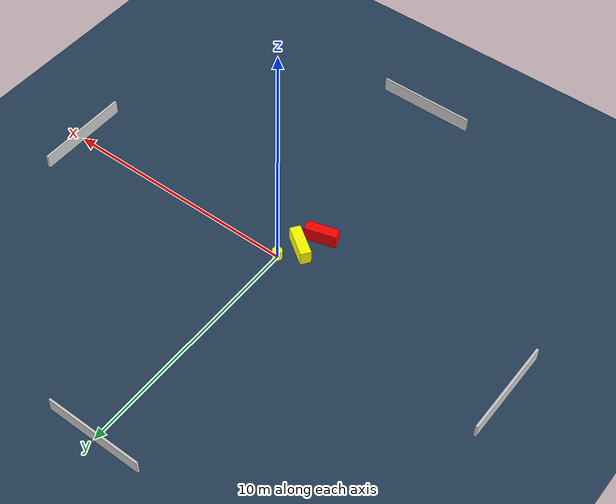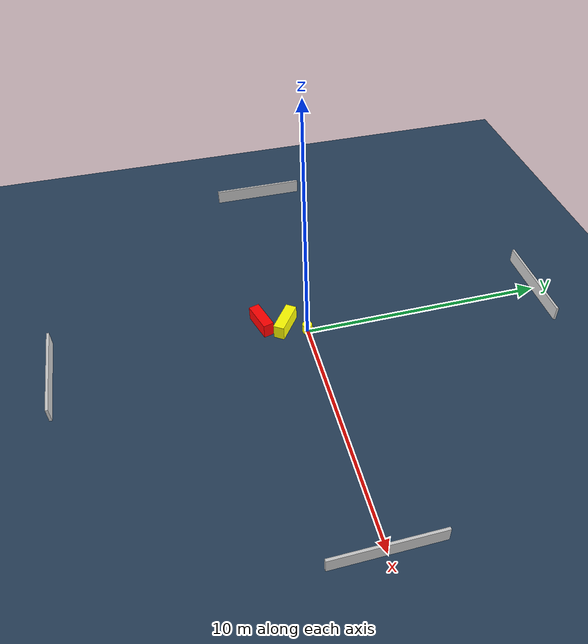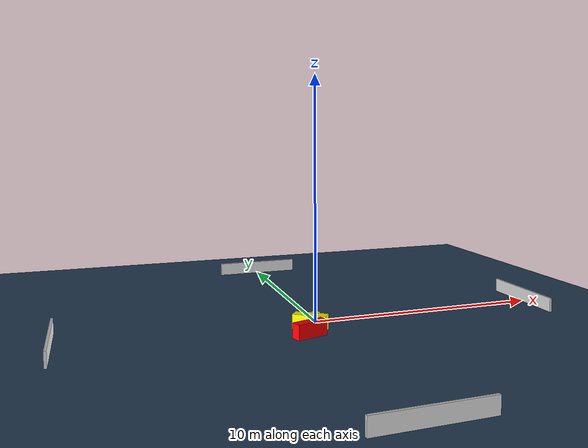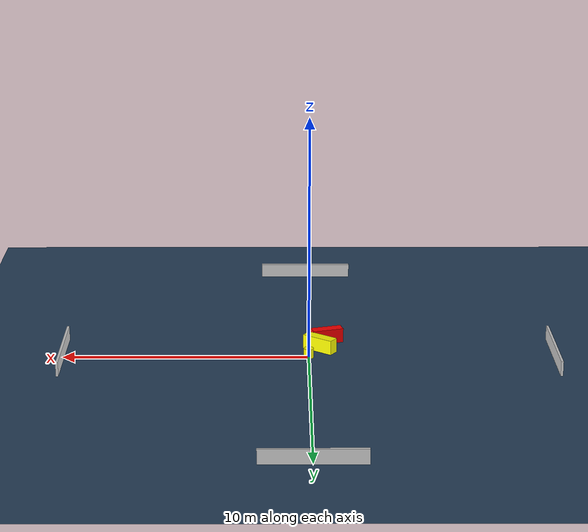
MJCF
<?xml version="1.0" ?>
<mujoco model="generated_environment">
  <option timestep="0.01" integrator="RK4" cone="elliptic"/>
  <default>
    <geom density="1"/>
  </default>
  <asset>
    <texture builtin="gradient" height="3072" name="skybox" rgb1="0.3 0.5 0.7" rgb2="0 0 0" type="skybox" width="512"/>
    <texture builtin="checker" height="300" name="groundplane" rgb1="0.2 0.3 0.4" rgb2="0.1 0.2 0.3" type="2d" width="300"/>
    <material name="groundplane" reflectance="0.2" texrepeat="5 5" texture="groundplane"/>
  </asset>
  <worldbody>
    <light dir="0 0 -1" directional="true" pos="0 0 1.5"/>
    <geom condim="3" friction="0.5 0.005 0.001" material="groundplane" name="floor" pos="0 0 0" size="0 0 0.05" type="plane"/>
    <body name="walls">
      <geom name="wall_1" condim="4" pos="-10.0 0.0 0.3" rgba="0.800000011920929 0.800000011920929 0.800000011920929 1.0" size="0.05 2.0 0.3" type="box"/>
      <geom name="wall_2" condim="4" pos="10.0 0.0 0.3" rgba="0.800000011920929 0.800000011920929 0.800000011920929 1.0" size="0.05 2.0 0.3" type="box"/>
      <geom name="wall_3" condim="4" pos="0.0 -10.0 0.3" rgba="0.800000011920929 0.800000011920929 0.800000011920929 1.0" size="2.0 0.05 0.3" type="box"/>
      <geom name="wall_4" condim="4" pos="0.0 10.0 0.3" rgba="0.800000011920929 0.800000011920929 0.800000011920929 1.0" size="2.0 0.05 0.3" type="box"/>
    </body>
    <body name="robot">
      <joint name="joint_x" type="slide" pos="0 0 0" axis="1 0 0"/>
      <joint name="joint_y" type="slide" pos="0 0 0" axis="0 1 0"/>
      <geom name="robot" type="cylinder" pos="0.0 0.0 0.2" size="0.2 0.2 0.0" mass="5.0" friction="1.0 0.005 0.0001" condim="4" rgba="1.0 1.0 0.0 1.0"/>
    </body>
    <body name="obstacle_1_movable">
      <geom name="obstacle_1_movable" condim="4" pos="-0.47259670065108605 -0.8041645812570388 0.3" euler="0 0 234.93777410704263" friction="0.0 0.005 0.001" rgba="1.0 1.0 0.0 1.0" size="0.2214160808087884 0.6795133818663591 0.3" type="box" mass="0.1"/>
      <joint type="free"/>
    </body>
    <body name="obstacle_2_static">
      <geom name="obstacle_2_static" condim="4" pos="-0.7889511248784353 -1.716972279475265 0.3" euler="0 0 196.12868416243566" friction="0.0 0.005 0.001" rgba="1.0 0.0 0.0 1.0" size="0.6445662709064022 0.21626975158421127 0.3" type="box"/>
    </body>
  </worldbody>
  <actuator>
    <motor name="actuator_x" joint="joint_x" gear="1" ctrlrange="-1 1"/>
    <motor name="actuator_y" joint="joint_y" gear="1" ctrlrange="-1 1"/>
  </actuator>
</mujoco>
